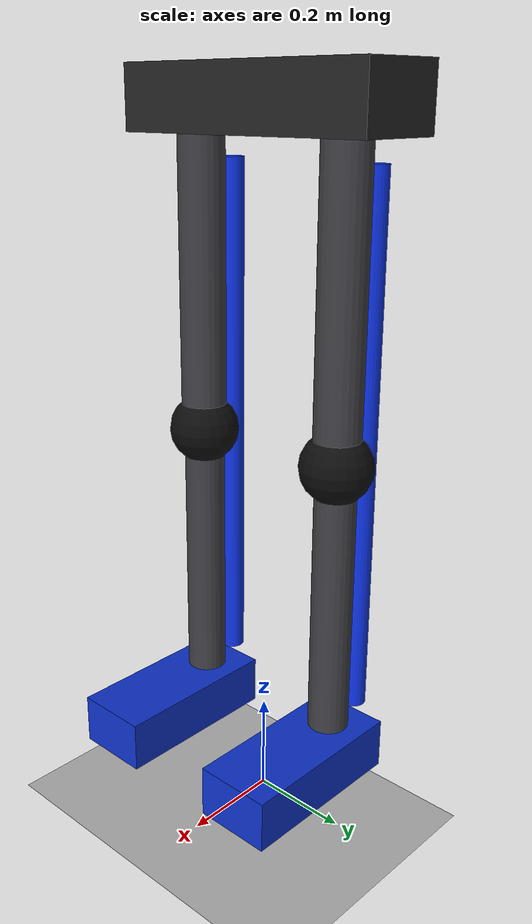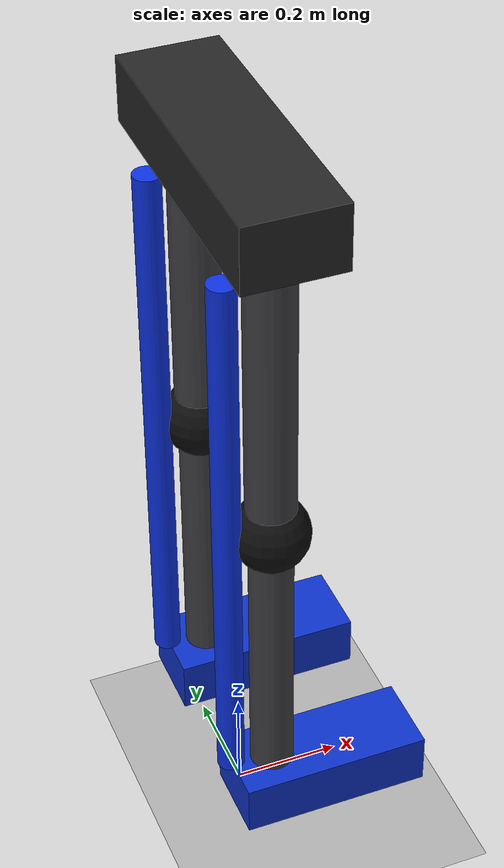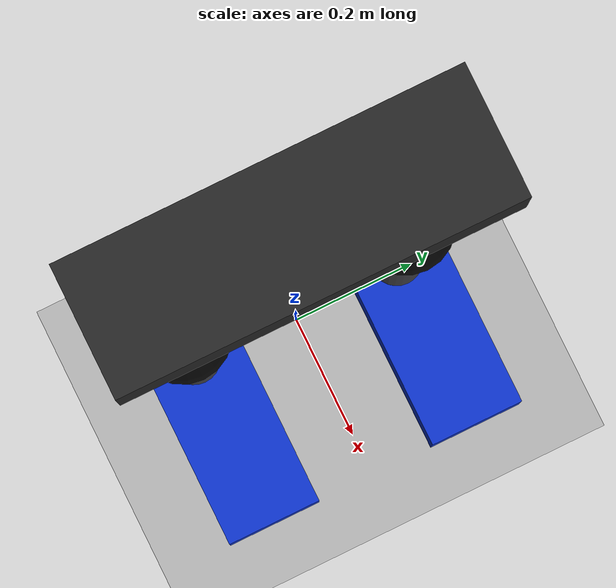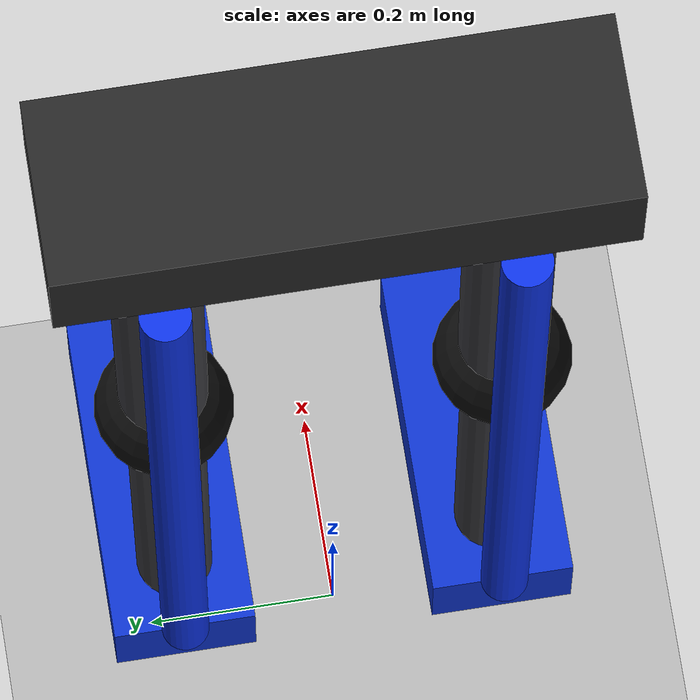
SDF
<?xml version="1.0" ?>
<sdf version="1.10">

  <world name="soft_exo_world">

    <gravity>0 0 -9.8</gravity>

    <!-- Ánh sáng -->
    <light type="directional" name="sun">
      <cast_shadows>true</cast_shadows>
      <pose>0 0 10 0 0 0</pose>
      <diffuse>0.8 0.8 0.8 1</diffuse>
      <specular>0.2 0.2 0.2 1</specular>
      <direction>-0.5 0.1 -0.9</direction>
    </light>

    <!-- Mặt đất -->
    <model name="ground">
      <static>true</static>

      <link name="ground_link">

        <collision name="collision">
          <geometry>
            <plane>
              <normal>0 0 1</normal>
              <size>20 20</size>
            </plane>
          </geometry>
        </collision>

        <visual name="visual">
          <geometry>
            <plane>
              <normal>0 0 1</normal>
              <size>20 20</size>
            </plane>
          </geometry>

          <material>
            <diffuse>0.7 0.7 0.7 1</diffuse>
          </material>
        </visual>

      </link>
    </model>

    <!-- SOFT EXO -->
    <model name="soft_exo">

      <!-- Tạm thời khóa model để xem hình -->
      <static>true</static>

      <pose>0 0 0.05 0 0 0</pose>

      <link name="exo_frame">

        <!-- Thanh hông -->
        <visual name="pelvis">
          <pose>0 0 1.35 0 0 0</pose>

          <geometry>
            <box>
              <size>0.18 0.55 0.12</size>
            </box>
          </geometry>

          <material>
            <diffuse>0.15 0.15 0.15 1</diffuse>
          </material>
        </visual>

        <!-- ĐÙI TRÁI -->
        <visual name="left_thigh">
          <pose>0 0.17 1.02 0 0 0</pose>

          <geometry>
            <cylinder>
              <radius>0.045</radius>
              <length>0.55</length>
            </cylinder>
          </geometry>

          <material>
            <diffuse>0.25 0.25 0.27 1</diffuse>
          </material>
        </visual>

        <!-- ĐÙI PHẢI -->
        <visual name="right_thigh">
          <pose>0 -0.17 1.02 0 0 0</pose>

          <geometry>
            <cylinder>
              <radius>0.045</radius>
              <length>0.55</length>
            </cylinder>
          </geometry>

          <material>
            <diffuse>0.25 0.25 0.27 1</diffuse>
          </material>
        </visual>

        <!-- GỐI TRÁI -->
        <visual name="left_knee">
          <pose>0 0.17 0.72 0 0 0</pose>

          <geometry>
            <sphere>
              <radius>0.07</radius>
            </sphere>
          </geometry>

          <material>
            <diffuse>0.05 0.05 0.05 1</diffuse>
          </material>
        </visual>

        <!-- GỐI PHẢI -->
        <visual name="right_knee">
          <pose>0 -0.17 0.72 0 0 0</pose>

          <geometry>
            <sphere>
              <radius>0.07</radius>
            </sphere>
          </geometry>

          <material>
            <diffuse>0.05 0.05 0.05 1</diffuse>
          </material>
        </visual>

        <!-- CẲNG CHÂN TRÁI -->
        <visual name="left_shin">
          <pose>0 0.17 0.43 0 0 0</pose>

          <geometry>
            <cylinder>
              <radius>0.04</radius>
              <length>0.5</length>
            </cylinder>
          </geometry>

          <material>
            <diffuse>0.25 0.25 0.27 1</diffuse>
          </material>
        </visual>

        <!-- CẲNG CHÂN PHẢI -->
        <visual name="right_shin">
          <pose>0 -0.17 0.43 0 0 0</pose>

          <geometry>
            <cylinder>
              <radius>0.04</radius>
              <length>0.5</length>
            </cylinder>
          </geometry>

          <material>
            <diffuse>0.25 0.25 0.27 1</diffuse>
          </material>
        </visual>

        <!-- BÀN CHÂN TRÁI -->
        <visual name="left_foot">
          <pose>0.1 0.17 0.13 0 0 0</pose>

          <geometry>
            <box>
              <size>0.35 0.15 0.1</size>
            </box>
          </geometry>

          <material>
            <diffuse>0.05 0.2 0.8 1</diffuse>
          </material>
        </visual>

        <!-- BÀN CHÂN PHẢI -->
        <visual name="right_foot">
          <pose>0.1 -0.17 0.13 0 0 0</pose>

          <geometry>
            <box>
              <size>0.35 0.15 0.1</size>
            </box>
          </geometry>

          <material>
            <diffuse>0.05 0.2 0.8 1</diffuse>
          </material>
        </visual>

        <!-- THANH TRỢ LỰC TRÁI -->
        <visual name="left_exo">
          <pose>-0.08 0.17 0.72 0 0 0</pose>

          <geometry>
            <cylinder>
              <radius>0.025</radius>
              <length>1.05</length>
            </cylinder>
          </geometry>

          <material>
            <diffuse>0.05 0.2 0.9 1</diffuse>
          </material>
        </visual>

        <!-- THANH TRỢ LỰC PHẢI -->
        <visual name="right_exo">
          <pose>-0.08 -0.17 0.72 0 0 0</pose>

          <geometry>
            <cylinder>
              <radius>0.025</radius>
              <length>1.05</length>
            </cylinder>
          </geometry>

          <material>
            <diffuse>0.05 0.2 0.9 1</diffuse>
          </material>
        </visual>

      </link>

    </model>

  </world>

</sdf>
